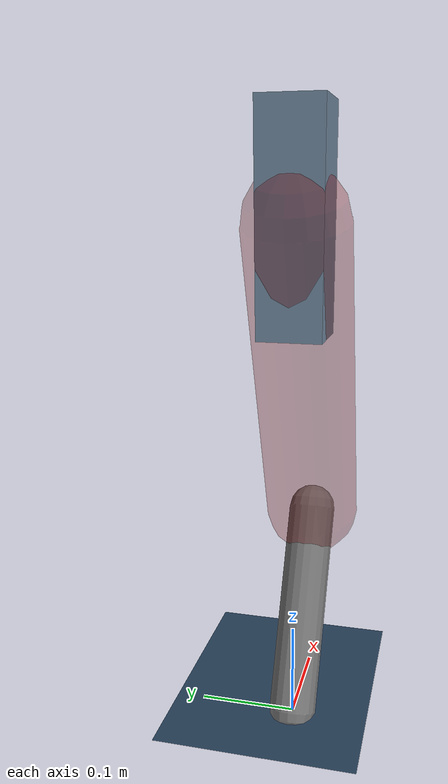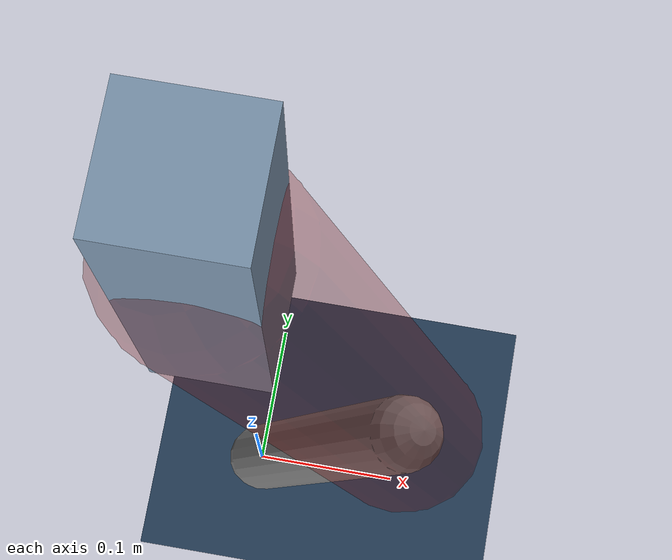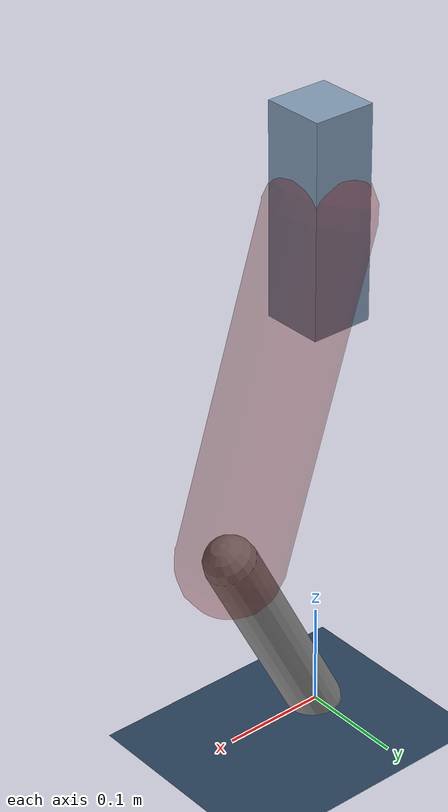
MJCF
<mujoco model="Hopper2D">
	<compiler inertiafromgeom="true" angle="radian" />
	<option timestep="0.001" integrator="implicit" cone="elliptic" solver="Newton" tolerance="1e-10" />

	<default>
		<geom contype="1" conaffinity="1" condim="3" friction="2 0.005 0.0001" solref="0.005 1" />
		<joint limited="true" damping="0.1" />
	</default>

	<asset>
		<texture name="skybox" type="skybox" builtin="gradient" rgb1=".4 .6 .8" rgb2="0 0 0" width="800" height="800" />
		<texture name="grid" type="2d" builtin="checker" rgb1=".1 .2 .3" rgb2=".2 .3 .4" width="300" height="300" mark="edge" markrgb=".2 .3 .4" />
		<material name="ground" texture="grid" texrepeat="1 1" texuniform="true" reflectance="0.1" />
		<material name="leg" rgba="0.5 0.6 0.7 1" />
	</asset>

	<worldbody>

		<geom name="floor" type="plane" size="5 5 0.25" material="ground" />

		<light directional="false" diffuse="0.8 0.8 0.8" specular="0.3 0.3 0.3" pos="0 0 2" dir="0 0 -1" />
		<light mode="targetbodycom" target="base" directional="false" diffuse="0.8 0.8 0.8" specular="0.3 0.3 0.3" pos="0 0 2" dir="0 0 -1" />

		<camera name="fixed" pos="0 -2 1" xyaxes="1 0 0 0 0 1" />
		<camera name="tracking" mode="trackcom" pos="0 -3 1" />

		<body name="root" pos="0 0 0.5051621872618642">
			<joint name="slide_x" type="slide" axis="1 0 0" range="-100 100" />
			<joint name="slide_z" type="slide" axis="0 0 1" range="0 10" />

			<body name="base" pos="0 0 0">
				<geom name="torso" type="box" size="0.03 0.03 0.1" mass="2.696" material="leg" />

				<body name="link1" pos="0 0 0" euler="0 1.2568131680806989 0">
					<joint type="hinge" axis="0 -1 0" pos="0 0 0" name="hinge1" limited="true" range="-3.14 3.14" stiffness="0" damping="0.1" />
					<geom name="thigh" type="capsule" fromto="0 0 0 0.3237877878185976 0 0" size="0.05" rgba="0.5 0 0 0.3" mass="1.0537058058920734" />

					<body name="link2" pos="0.3237877878185976 0 0" euler="0 0.7832926252570651 0">
						<joint type="hinge" axis="0 -1 0" pos="0 0 0" name="hinge2" limited="true" range="-3.14 3.14" stiffness="0" damping="0.1" />
						<geom name="shank" type="capsule" fromto="0 0 0 0.2211103592427713 0 0" size="0.025" mass="0.41858828739421705" />

					</body>
				</body>
			</body>
		</body>
	</worldbody>

	<actuator>
		<motor name="torque1" joint="hinge1" ctrlrange="-35.66514019466716 35.66514019466716" ctrllimited="true" gear="1" />
		<motor name="torque2" joint="hinge2" ctrlrange="-198.96716879588286 198.96716879588286" ctrllimited="true" gear="1" />
	</actuator>
</mujoco>
